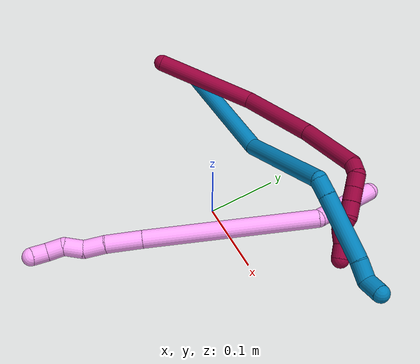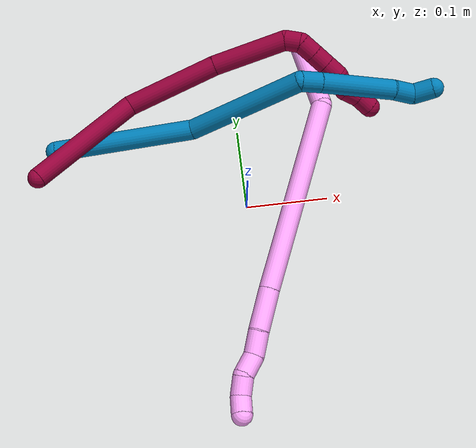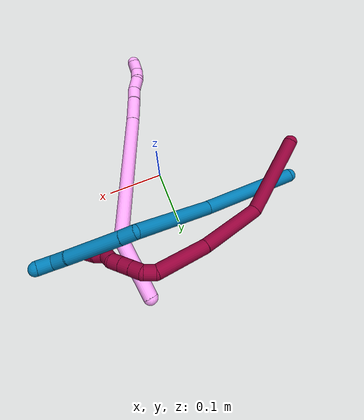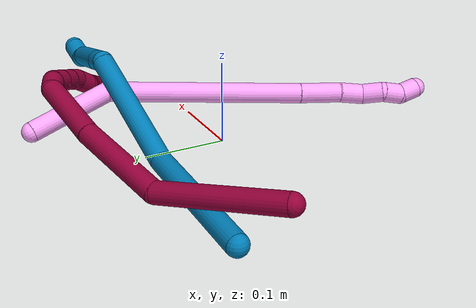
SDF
<sdf version="1.7">
 <world name="default">
  <model name="4">
   <static>0</static>
   <link name="4">
    <collision name="collision-cylinder-e_1_1_4">
     <pose>0.004999 -0.052545 0.001747 1.53757 0.0948 0.091705</pose>
     <geometry><cylinder><radius>0.0125</radius><length>0.105623</length></cylinder></geometry>
     <surface>
      <friction><ode><mu>1.16</mu><mu2>1.16</mu2><slip1>0</slip1><slip2>0</slip2></ode></friction>
      <contact><ode><kp>1e+06</kp><kd>1</kd><max_vel>0</max_vel><min_depth>0.001</min_depth></ode></contact>
     </surface>
    </collision>
    <visual name="visual-cylinder-e_1_1_4">
     <pose>0.004999 -0.052545 0.001747 1.53757 0.0948 0.091705</pose>
     <geometry><cylinder><radius>0.0125</radius><length>0.105623</length></cylinder></geometry>
     <material><ambient>1 0.65098 0.996078 1</ambient></material>
    </visual>
    <collision name="collision-cylinder-e_2_4_5">
     <pose>0.063433 -0.197341 0.059916 1.02188 0.458948 0.260414</pose>
     <geometry><cylinder><radius>0.0125</radius><length>0.241237</length></cylinder></geometry>
     <surface>
      <friction><ode><mu>1.16</mu><mu2>1.16</mu2><slip1>0</slip1><slip2>0</slip2></ode></friction>
      <contact><ode><kp>1e+06</kp><kd>1</kd><max_vel>0</max_vel><min_depth>0.001</min_depth></ode></contact>
     </surface>
    </collision>
    <visual name="visual-cylinder-e_2_4_5">
     <pose>0.063433 -0.197341 0.059916 1.02188 0.458948 0.260414</pose>
     <geometry><cylinder><radius>0.0125</radius><length>0.241237</length></cylinder></geometry>
     <material><ambient>1 0.65098 0.996078 1</ambient></material>
    </visual>
    <collision name="collision-cylinder-e_3_5_6">
     <pose>0.127637 -0.309462 0.127613 1.05469 0.440487 0.259287</pose>
     <geometry><cylinder><radius>0.0125</radius><length>0.050514</length></cylinder></geometry>
     <surface>
      <friction><ode><mu>1.16</mu><mu2>1.16</mu2><slip1>0</slip1><slip2>0</slip2></ode></friction>
      <contact><ode><kp>1e+06</kp><kd>1</kd><max_vel>0</max_vel><min_depth>0.001</min_depth></ode></contact>
     </surface>
    </collision>
    <visual name="visual-cylinder-e_3_5_6">
     <pose>0.127637 -0.309462 0.127613 1.05469 0.440487 0.259287</pose>
     <geometry><cylinder><radius>0.0125</radius><length>0.050514</length></cylinder></geometry>
     <material><ambient>1 0.65098 0.996078 1</ambient></material>
    </visual>
    <collision name="collision-cylinder-e_4_6_7">
     <pose>0.143401 -0.340805 0.146779 0.968272 0.344411 0.182423</pose>
     <geometry><cylinder><radius>0.0125</radius><length>0.029588</length></cylinder></geometry>
     <surface>
      <friction><ode><mu>1.16</mu><mu2>1.16</mu2><slip1>0</slip1><slip2>0</slip2></ode></friction>
      <contact><ode><kp>1e+06</kp><kd>1</kd><max_vel>0</max_vel><min_depth>0.001</min_depth></ode></contact>
     </surface>
    </collision>
    <visual name="visual-cylinder-e_4_6_7">
     <pose>0.143401 -0.340805 0.146779 0.968272 0.344411 0.182423</pose>
     <geometry><cylinder><radius>0.0125</radius><length>0.029588</length></cylinder></geometry>
     <material><ambient>1 0.65098 0.996078 1</ambient></material>
    </visual>
    <collision name="collision-cylinder-e_5_7_8">
     <pose>0.157226 -0.361319 0.158876 1.13544 0.724805 0.474501</pose>
     <geometry><cylinder><radius>0.0125</radius><length>0.026639</length></cylinder></geometry>
     <surface>
      <friction><ode><mu>1.16</mu><mu2>1.16</mu2><slip1>0</slip1><slip2>0</slip2></ode></friction>
      <contact><ode><kp>1e+06</kp><kd>1</kd><max_vel>0</max_vel><min_depth>0.001</min_depth></ode></contact>
     </surface>
    </collision>
    <visual name="visual-cylinder-e_5_7_8">
     <pose>0.157226 -0.361319 0.158876 1.13544 0.724805 0.474501</pose>
     <geometry><cylinder><radius>0.0125</radius><length>0.026639</length></cylinder></geometry>
     <material><ambient>1 0.65098 0.996078 1</ambient></material>
    </visual>
    <collision name="collision-cylinder-e_6_8_9">
     <pose>0.169076 -0.37977 0.169959 0.939589 0.253424 0.129179</pose>
     <geometry><cylinder><radius>0.0125</radius><length>0.02408</length></cylinder></geometry>
     <surface>
      <friction><ode><mu>1.16</mu><mu2>1.16</mu2><slip1>0</slip1><slip2>0</slip2></ode></friction>
      <contact><ode><kp>1e+06</kp><kd>1</kd><max_vel>0</max_vel><min_depth>0.001</min_depth></ode></contact>
     </surface>
    </collision>
    <visual name="visual-cylinder-e_6_8_9">
     <pose>0.169076 -0.37977 0.169959 0.939589 0.253424 0.129179</pose>
     <geometry><cylinder><radius>0.0125</radius><length>0.02408</length></cylinder></geometry>
     <material><ambient>1 0.65098 0.996078 1</ambient></material>
    </visual>
    <collision name="collision-cylinder-e_7_9_2">
     <pose>0.174836 -0.39989 0.178352 1.43025 0.248264 0.215883</pose>
     <geometry><cylinder><radius>0.0125</radius><length>0.022319</length></cylinder></geometry>
     <surface>
      <friction><ode><mu>1.16</mu><mu2>1.16</mu2><slip1>0</slip1><slip2>0</slip2></ode></friction>
      <contact><ode><kp>1e+06</kp><kd>1</kd><max_vel>0</max_vel><min_depth>0.001</min_depth></ode></contact>
     </surface>
    </collision>
    <visual name="visual-cylinder-e_7_9_2">
     <pose>0.174836 -0.39989 0.178352 1.43025 0.248264 0.215883</pose>
     <geometry><cylinder><radius>0.0125</radius><length>0.022319</length></cylinder></geometry>
     <material><ambient>1 0.65098 0.996078 1</ambient></material>
    </visual>
    <collision name="collision-sphere-2">
     <pose>0.177579 -0.410601 0.179868 0 -0 0</pose>
     <geometry><sphere><radius>0.0125</radius></sphere></geometry>
     <surface>
      <friction><ode><mu>1.16</mu><mu2>1.16</mu2><slip1>0</slip1><slip2>0</slip2></ode></friction>
      <contact><ode><kp>1e+06</kp><kd>1</kd><max_vel>0</max_vel><min_depth>0.001</min_depth></ode></contact>
     </surface>
    </collision>
    <visual name="visual-sphere-2">
     <pose>0.177579 -0.410601 0.179868 0 -0 0</pose>
     <geometry><sphere><radius>0.0125</radius></sphere></geometry>
     <material><ambient>1 0.65098 0.996078 1</ambient></material>
    </visual>
    <collision name="collision-sphere-9">
     <pose>0.172094 -0.389179 0.176837 0 -0 0</pose>
     <geometry><sphere><radius>0.0125</radius></sphere></geometry>
     <surface>
      <friction><ode><mu>1.16</mu><mu2>1.16</mu2><slip1>0</slip1><slip2>0</slip2></ode></friction>
      <contact><ode><kp>1e+06</kp><kd>1</kd><max_vel>0</max_vel><min_depth>0.001</min_depth></ode></contact>
     </surface>
    </collision>
    <visual name="visual-sphere-9">
     <pose>0.172094 -0.389179 0.176837 0 -0 0</pose>
     <geometry><sphere><radius>0.0125</radius></sphere></geometry>
     <material><ambient>1 0.65098 0.996078 1</ambient></material>
    </visual>
    <collision name="collision-sphere-4">
     <pose>0.009998 -0.10509 0.003494 0 -0 0</pose>
     <geometry><sphere><radius>0.0125</radius></sphere></geometry>
     <surface>
      <friction><ode><mu>1.16</mu><mu2>1.16</mu2><slip1>0</slip1><slip2>0</slip2></ode></friction>
      <contact><ode><kp>1e+06</kp><kd>1</kd><max_vel>0</max_vel><min_depth>0.001</min_depth></ode></contact>
     </surface>
    </collision>
    <visual name="visual-sphere-4">
     <pose>0.009998 -0.10509 0.003494 0 -0 0</pose>
     <geometry><sphere><radius>0.0125</radius></sphere></geometry>
     <material><ambient>1 0.65098 0.996078 1</ambient></material>
    </visual>
    <collision name="collision-sphere-1">
     <geometry><sphere><radius>0.0125</radius></sphere></geometry>
     <surface>
      <friction><ode><mu>1.16</mu><mu2>1.16</mu2><slip1>0</slip1><slip2>0</slip2></ode></friction>
      <contact><ode><kp>1e+06</kp><kd>1</kd><max_vel>0</max_vel><min_depth>0.001</min_depth></ode></contact>
     </surface>
    </collision>
    <visual name="visual-sphere-1">
     <geometry><sphere><radius>0.0125</radius></sphere></geometry>
     <material><ambient>1 0.65098 0.996078 1</ambient></material>
    </visual>
    <collision name="collision-sphere-8">
     <pose>0.166057 -0.37036 0.163081 0 -0 0</pose>
     <geometry><sphere><radius>0.0125</radius></sphere></geometry>
     <surface>
      <friction><ode><mu>1.16</mu><mu2>1.16</mu2><slip1>0</slip1><slip2>0</slip2></ode></friction>
      <contact><ode><kp>1e+06</kp><kd>1</kd><max_vel>0</max_vel><min_depth>0.001</min_depth></ode></contact>
     </surface>
    </collision>
    <visual name="visual-sphere-8">
     <pose>0.166057 -0.37036 0.163081 0 -0 0</pose>
     <geometry><sphere><radius>0.0125</radius></sphere></geometry>
     <material><ambient>1 0.65098 0.996078 1</ambient></material>
    </visual>
    <collision name="collision-sphere-5">
     <pose>0.116867 -0.289591 0.116338 0 -0 0</pose>
     <geometry><sphere><radius>0.0125</radius></sphere></geometry>
     <surface>
      <friction><ode><mu>1.16</mu><mu2>1.16</mu2><slip1>0</slip1><slip2>0</slip2></ode></friction>
      <contact><ode><kp>1e+06</kp><kd>1</kd><max_vel>0</max_vel><min_depth>0.001</min_depth></ode></contact>
     </surface>
    </collision>
    <visual name="visual-sphere-5">
     <pose>0.116867 -0.289591 0.116338 0 -0 0</pose>
     <geometry><sphere><radius>0.0125</radius></sphere></geometry>
     <material><ambient>1 0.65098 0.996078 1</ambient></material>
    </visual>
    <collision name="collision-sphere-6">
     <pose>0.138406 -0.329332 0.138887 0 -0 0</pose>
     <geometry><sphere><radius>0.0125</radius></sphere></geometry>
     <surface>
      <friction><ode><mu>1.16</mu><mu2>1.16</mu2><slip1>0</slip1><slip2>0</slip2></ode></friction>
      <contact><ode><kp>1e+06</kp><kd>1</kd><max_vel>0</max_vel><min_depth>0.001</min_depth></ode></contact>
     </surface>
    </collision>
    <visual name="visual-sphere-6">
     <pose>0.138406 -0.329332 0.138887 0 -0 0</pose>
     <geometry><sphere><radius>0.0125</radius></sphere></geometry>
     <material><ambient>1 0.65098 0.996078 1</ambient></material>
    </visual>
    <collision name="collision-sphere-7">
     <pose>0.148396 -0.352278 0.15467 0 -0 0</pose>
     <geometry><sphere><radius>0.0125</radius></sphere></geometry>
     <surface>
      <friction><ode><mu>1.16</mu><mu2>1.16</mu2><slip1>0</slip1><slip2>0</slip2></ode></friction>
      <contact><ode><kp>1e+06</kp><kd>1</kd><max_vel>0</max_vel><min_depth>0.001</min_depth></ode></contact>
     </surface>
    </collision>
    <visual name="visual-sphere-7">
     <pose>0.148396 -0.352278 0.15467 0 -0 0</pose>
     <geometry><sphere><radius>0.0125</radius></sphere></geometry>
     <material><ambient>1 0.65098 0.996078 1</ambient></material>
    </visual>
    <inertial>
     <pose>0.077365 -0.213134 0.075466 0 -0 0</pose>
     <mass>0.5</mass>
     <inertia>
      <ixx>0.001443</ixx>
      <ixy>0</ixy>
      <ixz>0</ixz>
      <iyy>0.000981</iyy>
      <iyz>0</iyz>
      <izz>0.000494</izz>
     </inertia>
    </inertial>
   </link>
   <pose>0.091581 0.207448 0.017651 -2.85347 -0.408196 -3.01866</pose>
  </model>
  <model name="8">
   <static>0</static>
   <link name="8">
    <collision name="collision-cylinder-e_1_1_4">
     <pose>-0.01065 0.038351 -0.063033 -2.595 -0.143348 0.501488</pose>
     <geometry><cylinder><radius>0.0125</radius><length>0.149095</length></cylinder></geometry>
     <surface>
      <friction><ode><mu>1.16</mu><mu2>1.16</mu2><slip1>0</slip1><slip2>0</slip2></ode></friction>
      <contact><ode><kp>1e+06</kp><kd>1</kd><max_vel>0</max_vel><min_depth>0.001</min_depth></ode></contact>
     </surface>
    </collision>
    <visual name="visual-cylinder-e_1_1_4">
     <pose>-0.01065 0.038351 -0.063033 -2.595 -0.143348 0.501488</pose>
     <geometry><cylinder><radius>0.0125</radius><length>0.149095</length></cylinder></geometry>
     <material><ambient>0.584314 0 0.227451 1</ambient></material>
    </visual>
    <collision name="collision-cylinder-e_2_4_5">
     <pose>0.001092 0.1057 -0.171969 -2.57817 0.391151 -1.20053</pose>
     <geometry><cylinder><radius>0.0125</radius><length>0.117462</length></cylinder></geometry>
     <surface>
      <friction><ode><mu>1.16</mu><mu2>1.16</mu2><slip1>0</slip1><slip2>0</slip2></ode></friction>
      <contact><ode><kp>1e+06</kp><kd>1</kd><max_vel>0</max_vel><min_depth>0.001</min_depth></ode></contact>
     </surface>
    </collision>
    <visual name="visual-cylinder-e_2_4_5">
     <pose>0.001092 0.1057 -0.171969 -2.57817 0.391151 -1.20053</pose>
     <geometry><cylinder><radius>0.0125</radius><length>0.117462</length></cylinder></geometry>
     <material><ambient>0.584314 0 0.227451 1</ambient></material>
    </visual>
    <collision name="collision-cylinder-e_3_5_6">
     <pose>0.045644 0.154132 -0.25357 -2.64304 0.499162 -1.57206</pose>
     <geometry><cylinder><radius>0.0125</radius><length>0.092588</length></cylinder></geometry>
     <surface>
      <friction><ode><mu>1.16</mu><mu2>1.16</mu2><slip1>0</slip1><slip2>0</slip2></ode></friction>
      <contact><ode><kp>1e+06</kp><kd>1</kd><max_vel>0</max_vel><min_depth>0.001</min_depth></ode></contact>
     </surface>
    </collision>
    <visual name="visual-cylinder-e_3_5_6">
     <pose>0.045644 0.154132 -0.25357 -2.64304 0.499162 -1.57206</pose>
     <geometry><cylinder><radius>0.0125</radius><length>0.092588</length></cylinder></geometry>
     <material><ambient>0.584314 0 0.227451 1</ambient></material>
    </visual>
    <collision name="collision-cylinder-e_4_6_7">
     <pose>0.074733 0.173237 -0.296542 3.09626 0.760522 3.02829</pose>
     <geometry><cylinder><radius>0.0125</radius><length>0.020105</length></cylinder></geometry>
     <surface>
      <friction><ode><mu>1.16</mu><mu2>1.16</mu2><slip1>0</slip1><slip2>0</slip2></ode></friction>
      <contact><ode><kp>1e+06</kp><kd>1</kd><max_vel>0</max_vel><min_depth>0.001</min_depth></ode></contact>
     </surface>
    </collision>
    <visual name="visual-cylinder-e_4_6_7">
     <pose>0.074733 0.173237 -0.296542 3.09626 0.760522 3.02829</pose>
     <geometry><cylinder><radius>0.0125</radius><length>0.020105</length></cylinder></geometry>
     <material><ambient>0.584314 0 0.227451 1</ambient></material>
    </visual>
    <collision name="collision-cylinder-e_5_7_8">
     <pose>0.086733 0.166892 -0.310548 2.41229 0.511788 1.20171</pose>
     <geometry><cylinder><radius>0.0125</radius><length>0.020706</length></cylinder></geometry>
     <surface>
      <friction><ode><mu>1.16</mu><mu2>1.16</mu2><slip1>0</slip1><slip2>0</slip2></ode></friction>
      <contact><ode><kp>1e+06</kp><kd>1</kd><max_vel>0</max_vel><min_depth>0.001</min_depth></ode></contact>
     </surface>
    </collision>
    <visual name="visual-cylinder-e_5_7_8">
     <pose>0.086733 0.166892 -0.310548 2.41229 0.511788 1.20171</pose>
     <geometry><cylinder><radius>0.0125</radius><length>0.020706</length></cylinder></geometry>
     <material><ambient>0.584314 0 0.227451 1</ambient></material>
    </visual>
    <collision name="collision-cylinder-e_6_8_9">
     <pose>0.096596 0.154998 -0.323819 2.4093 0.499013 1.17308</pose>
     <geometry><cylinder><radius>0.0125</radius><length>0.020032</length></cylinder></geometry>
     <surface>
      <friction><ode><mu>1.16</mu><mu2>1.16</mu2><slip1>0</slip1><slip2>0</slip2></ode></friction>
      <contact><ode><kp>1e+06</kp><kd>1</kd><max_vel>0</max_vel><min_depth>0.001</min_depth></ode></contact>
     </surface>
    </collision>
    <visual name="visual-cylinder-e_6_8_9">
     <pose>0.096596 0.154998 -0.323819 2.4093 0.499013 1.17308</pose>
     <geometry><cylinder><radius>0.0125</radius><length>0.020032</length></cylinder></geometry>
     <material><ambient>0.584314 0 0.227451 1</ambient></material>
    </visual>
    <collision name="collision-cylinder-e_7_9_10">
     <pose>0.106043 0.143207 -0.336951 2.41066 0.483908 1.14561</pose>
     <geometry><cylinder><radius>0.0125</radius><length>0.020005</length></cylinder></geometry>
     <surface>
      <friction><ode><mu>1.16</mu><mu2>1.16</mu2><slip1>0</slip1><slip2>0</slip2></ode></friction>
      <contact><ode><kp>1e+06</kp><kd>1</kd><max_vel>0</max_vel><min_depth>0.001</min_depth></ode></contact>
     </surface>
    </collision>
    <visual name="visual-cylinder-e_7_9_10">
     <pose>0.106043 0.143207 -0.336951 2.41066 0.483908 1.14561</pose>
     <geometry><cylinder><radius>0.0125</radius><length>0.020005</length></cylinder></geometry>
     <material><ambient>0.584314 0 0.227451 1</ambient></material>
    </visual>
    <collision name="collision-cylinder-e_8_10_11">
     <pose>0.113191 0.128582 -0.347766 2.022 0.252162 0.399149</pose>
     <geometry><cylinder><radius>0.0125</radius><length>0.02</length></cylinder></geometry>
     <surface>
      <friction><ode><mu>1.16</mu><mu2>1.16</mu2><slip1>0</slip1><slip2>0</slip2></ode></friction>
      <contact><ode><kp>1e+06</kp><kd>1</kd><max_vel>0</max_vel><min_depth>0.001</min_depth></ode></contact>
     </surface>
    </collision>
    <visual name="visual-cylinder-e_8_10_11">
     <pose>0.113191 0.128582 -0.347766 2.022 0.252162 0.399149</pose>
     <geometry><cylinder><radius>0.0125</radius><length>0.02</length></cylinder></geometry>
     <material><ambient>0.584314 0 0.227451 1</ambient></material>
    </visual>
    <collision name="collision-cylinder-e_9_11_12">
     <pose>0.119002 0.116123 -0.360651 2.7336 0.337839 1.37886</pose>
     <geometry><cylinder><radius>0.0125</radius><length>0.020004</length></cylinder></geometry>
     <surface>
      <friction><ode><mu>1.16</mu><mu2>1.16</mu2><slip1>0</slip1><slip2>0</slip2></ode></friction>
      <contact><ode><kp>1e+06</kp><kd>1</kd><max_vel>0</max_vel><min_depth>0.001</min_depth></ode></contact>
     </surface>
    </collision>
    <visual name="visual-cylinder-e_9_11_12">
     <pose>0.119002 0.116123 -0.360651 2.7336 0.337839 1.37886</pose>
     <geometry><cylinder><radius>0.0125</radius><length>0.020004</length></cylinder></geometry>
     <material><ambient>0.584314 0 0.227451 1</ambient></material>
    </visual>
    <collision name="collision-cylinder-e_10_12_2">
     <pose>0.12586 0.106341 -0.376456 2.43991 0.362137 0.92766</pose>
     <geometry><cylinder><radius>0.0125</radius><length>0.020003</length></cylinder></geometry>
     <surface>
      <friction><ode><mu>1.16</mu><mu2>1.16</mu2><slip1>0</slip1><slip2>0</slip2></ode></friction>
      <contact><ode><kp>1e+06</kp><kd>1</kd><max_vel>0</max_vel><min_depth>0.001</min_depth></ode></contact>
     </surface>
    </collision>
    <visual name="visual-cylinder-e_10_12_2">
     <pose>0.12586 0.106341 -0.376456 2.43991 0.362137 0.92766</pose>
     <geometry><cylinder><radius>0.0125</radius><length>0.020003</length></cylinder></geometry>
     <material><ambient>0.584314 0 0.227451 1</ambient></material>
    </visual>
    <collision name="collision-sphere-2">
     <pose>0.129403 0.100304 -0.383599 0 -0 0</pose>
     <geometry><sphere><radius>0.0125</radius></sphere></geometry>
     <surface>
      <friction><ode><mu>1.16</mu><mu2>1.16</mu2><slip1>0</slip1><slip2>0</slip2></ode></friction>
      <contact><ode><kp>1e+06</kp><kd>1</kd><max_vel>0</max_vel><min_depth>0.001</min_depth></ode></contact>
     </surface>
    </collision>
    <visual name="visual-sphere-2">
     <pose>0.129403 0.100304 -0.383599 0 -0 0</pose>
     <geometry><sphere><radius>0.0125</radius></sphere></geometry>
     <material><ambient>0.584314 0 0.227451 1</ambient></material>
    </visual>
    <collision name="collision-sphere-12">
     <pose>0.122317 0.112379 -0.369313 0 -0 0</pose>
     <geometry><sphere><radius>0.0125</radius></sphere></geometry>
     <surface>
      <friction><ode><mu>1.16</mu><mu2>1.16</mu2><slip1>0</slip1><slip2>0</slip2></ode></friction>
      <contact><ode><kp>1e+06</kp><kd>1</kd><max_vel>0</max_vel><min_depth>0.001</min_depth></ode></contact>
     </surface>
    </collision>
    <visual name="visual-sphere-12">
     <pose>0.122317 0.112379 -0.369313 0 -0 0</pose>
     <geometry><sphere><radius>0.0125</radius></sphere></geometry>
     <material><ambient>0.584314 0 0.227451 1</ambient></material>
    </visual>
    <collision name="collision-sphere-11">
     <pose>0.115686 0.119867 -0.351989 0 -0 0</pose>
     <geometry><sphere><radius>0.0125</radius></sphere></geometry>
     <surface>
      <friction><ode><mu>1.16</mu><mu2>1.16</mu2><slip1>0</slip1><slip2>0</slip2></ode></friction>
      <contact><ode><kp>1e+06</kp><kd>1</kd><max_vel>0</max_vel><min_depth>0.001</min_depth></ode></contact>
     </surface>
    </collision>
    <visual name="visual-sphere-11">
     <pose>0.115686 0.119867 -0.351989 0 -0 0</pose>
     <geometry><sphere><radius>0.0125</radius></sphere></geometry>
     <material><ambient>0.584314 0 0.227451 1</ambient></material>
    </visual>
    <collision name="collision-sphere-10">
     <pose>0.110696 0.137296 -0.343543 0 -0 0</pose>
     <geometry><sphere><radius>0.0125</radius></sphere></geometry>
     <surface>
      <friction><ode><mu>1.16</mu><mu2>1.16</mu2><slip1>0</slip1><slip2>0</slip2></ode></friction>
      <contact><ode><kp>1e+06</kp><kd>1</kd><max_vel>0</max_vel><min_depth>0.001</min_depth></ode></contact>
     </surface>
    </collision>
    <visual name="visual-sphere-10">
     <pose>0.110696 0.137296 -0.343543 0 -0 0</pose>
     <geometry><sphere><radius>0.0125</radius></sphere></geometry>
     <material><ambient>0.584314 0 0.227451 1</ambient></material>
    </visual>
    <collision name="collision-sphere-9">
     <pose>0.101389 0.149118 -0.330359 0 -0 0</pose>
     <geometry><sphere><radius>0.0125</radius></sphere></geometry>
     <surface>
      <friction><ode><mu>1.16</mu><mu2>1.16</mu2><slip1>0</slip1><slip2>0</slip2></ode></friction>
      <contact><ode><kp>1e+06</kp><kd>1</kd><max_vel>0</max_vel><min_depth>0.001</min_depth></ode></contact>
     </surface>
    </collision>
    <visual name="visual-sphere-9">
     <pose>0.101389 0.149118 -0.330359 0 -0 0</pose>
     <geometry><sphere><radius>0.0125</radius></sphere></geometry>
     <material><ambient>0.584314 0 0.227451 1</ambient></material>
    </visual>
    <collision name="collision-sphere-4">
     <pose>-0.021299 0.076702 -0.126066 0 -0 0</pose>
     <geometry><sphere><radius>0.0125</radius></sphere></geometry>
     <surface>
      <friction><ode><mu>1.16</mu><mu2>1.16</mu2><slip1>0</slip1><slip2>0</slip2></ode></friction>
      <contact><ode><kp>1e+06</kp><kd>1</kd><max_vel>0</max_vel><min_depth>0.001</min_depth></ode></contact>
     </surface>
    </collision>
    <visual name="visual-sphere-4">
     <pose>-0.021299 0.076702 -0.126066 0 -0 0</pose>
     <geometry><sphere><radius>0.0125</radius></sphere></geometry>
     <material><ambient>0.584314 0 0.227451 1</ambient></material>
    </visual>
    <collision name="collision-sphere-1">
     <geometry><sphere><radius>0.0125</radius></sphere></geometry>
     <surface>
      <friction><ode><mu>1.16</mu><mu2>1.16</mu2><slip1>0</slip1><slip2>0</slip2></ode></friction>
      <contact><ode><kp>1e+06</kp><kd>1</kd><max_vel>0</max_vel><min_depth>0.001</min_depth></ode></contact>
     </surface>
    </collision>
    <visual name="visual-sphere-1">
     <geometry><sphere><radius>0.0125</radius></sphere></geometry>
     <material><ambient>0.584314 0 0.227451 1</ambient></material>
    </visual>
    <collision name="collision-sphere-8">
     <pose>0.091803 0.160877 -0.317279 0 -0 0</pose>
     <geometry><sphere><radius>0.0125</radius></sphere></geometry>
     <surface>
      <friction><ode><mu>1.16</mu><mu2>1.16</mu2><slip1>0</slip1><slip2>0</slip2></ode></friction>
      <contact><ode><kp>1e+06</kp><kd>1</kd><max_vel>0</max_vel><min_depth>0.001</min_depth></ode></contact>
     </surface>
    </collision>
    <visual name="visual-sphere-8">
     <pose>0.091803 0.160877 -0.317279 0 -0 0</pose>
     <geometry><sphere><radius>0.0125</radius></sphere></geometry>
     <material><ambient>0.584314 0 0.227451 1</ambient></material>
    </visual>
    <collision name="collision-sphere-5">
     <pose>0.023483 0.134698 -0.217872 0 -0 0</pose>
     <geometry><sphere><radius>0.0125</radius></sphere></geometry>
     <surface>
      <friction><ode><mu>1.16</mu><mu2>1.16</mu2><slip1>0</slip1><slip2>0</slip2></ode></friction>
      <contact><ode><kp>1e+06</kp><kd>1</kd><max_vel>0</max_vel><min_depth>0.001</min_depth></ode></contact>
     </surface>
    </collision>
    <visual name="visual-sphere-5">
     <pose>0.023483 0.134698 -0.217872 0 -0 0</pose>
     <geometry><sphere><radius>0.0125</radius></sphere></geometry>
     <material><ambient>0.584314 0 0.227451 1</ambient></material>
    </visual>
    <collision name="collision-sphere-6">
     <pose>0.067804 0.173567 -0.289267 0 -0 0</pose>
     <geometry><sphere><radius>0.0125</radius></sphere></geometry>
     <surface>
      <friction><ode><mu>1.16</mu><mu2>1.16</mu2><slip1>0</slip1><slip2>0</slip2></ode></friction>
      <contact><ode><kp>1e+06</kp><kd>1</kd><max_vel>0</max_vel><min_depth>0.001</min_depth></ode></contact>
     </surface>
    </collision>
    <visual name="visual-sphere-6">
     <pose>0.067804 0.173567 -0.289267 0 -0 0</pose>
     <geometry><sphere><radius>0.0125</radius></sphere></geometry>
     <material><ambient>0.584314 0 0.227451 1</ambient></material>
    </visual>
    <collision name="collision-sphere-7">
     <pose>0.081662 0.172907 -0.303818 0 -0 0</pose>
     <geometry><sphere><radius>0.0125</radius></sphere></geometry>
     <surface>
      <friction><ode><mu>1.16</mu><mu2>1.16</mu2><slip1>0</slip1><slip2>0</slip2></ode></friction>
      <contact><ode><kp>1e+06</kp><kd>1</kd><max_vel>0</max_vel><min_depth>0.001</min_depth></ode></contact>
     </surface>
    </collision>
    <visual name="visual-sphere-7">
     <pose>0.081662 0.172907 -0.303818 0 -0 0</pose>
     <geometry><sphere><radius>0.0125</radius></sphere></geometry>
     <material><ambient>0.584314 0 0.227451 1</ambient></material>
    </visual>
    <inertial>
     <pose>0.034566 0.104669 -0.20079 0 -0 0</pose>
     <mass>0.5</mass>
     <inertia>
      <ixx>0.000264</ixx>
      <ixy>0</ixy>
      <ixz>0</ixz>
      <iyy>-0.000234</iyy>
      <iyz>0</iyz>
      <izz>-0.000319</izz>
     </inertia>
    </inertial>
   </link>
   <pose>-0.247069 0.05025 0.051933 0.947415 -0.730715 -0.967505</pose>
  </model>
  <model name="9">
   <static>0</static>
   <link name="9">
    <collision name="collision-cylinder-e_1_1_4">
     <pose>0.010182 -0.085852 0.005942 1.5017 0.117767 0.109915</pose>
     <geometry><cylinder><radius>0.0125</radius><length>0.173315</length></cylinder></geometry>
     <surface>
      <friction><ode><mu>1.16</mu><mu2>1.16</mu2><slip1>0</slip1><slip2>0</slip2></ode></friction>
      <contact><ode><kp>1e+06</kp><kd>1</kd><max_vel>0</max_vel><min_depth>0.001</min_depth></ode></contact>
     </surface>
    </collision>
    <visual name="visual-cylinder-e_1_1_4">
     <pose>0.010182 -0.085852 0.005942 1.5017 0.117767 0.109915</pose>
     <geometry><cylinder><radius>0.0125</radius><length>0.173315</length></cylinder></geometry>
     <material><ambient>0 0.490196 0.709804 1</ambient></material>
    </visual>
    <collision name="collision-cylinder-e_2_4_5">
     <pose>0.034168 -0.237117 0.049419 1.04985 0.181035 0.105032</pose>
     <geometry><cylinder><radius>0.0125</radius><length>0.153341</length></cylinder></geometry>
     <surface>
      <friction><ode><mu>1.16</mu><mu2>1.16</mu2><slip1>0</slip1><slip2>0</slip2></ode></friction>
      <contact><ode><kp>1e+06</kp><kd>1</kd><max_vel>0</max_vel><min_depth>0.001</min_depth></ode></contact>
     </surface>
    </collision>
    <visual name="visual-cylinder-e_2_4_5">
     <pose>0.034168 -0.237117 0.049419 1.04985 0.181035 0.105032</pose>
     <geometry><cylinder><radius>0.0125</radius><length>0.153341</length></cylinder></geometry>
     <material><ambient>0 0.490196 0.709804 1</ambient></material>
    </visual>
    <collision name="collision-cylinder-e_3_5_6">
     <pose>0.048247 -0.315015 0.083762 1.82109 0.021309 0.027441</pose>
     <geometry><cylinder><radius>0.0125</radius><length>0.025778</length></cylinder></geometry>
     <surface>
      <friction><ode><mu>1.16</mu><mu2>1.16</mu2><slip1>0</slip1><slip2>0</slip2></ode></friction>
      <contact><ode><kp>1e+06</kp><kd>1</kd><max_vel>0</max_vel><min_depth>0.001</min_depth></ode></contact>
     </surface>
    </collision>
    <visual name="visual-cylinder-e_3_5_6">
     <pose>0.048247 -0.315015 0.083762 1.82109 0.021309 0.027441</pose>
     <geometry><cylinder><radius>0.0125</radius><length>0.025778</length></cylinder></geometry>
     <material><ambient>0 0.490196 0.709804 1</ambient></material>
    </visual>
    <collision name="collision-cylinder-e_4_6_7">
     <pose>0.048176 -0.372785 0.06851 1.83108 -0.007366 -0.009585</pose>
     <geometry><cylinder><radius>0.0125</radius><length>0.093731</length></cylinder></geometry>
     <surface>
      <friction><ode><mu>1.16</mu><mu2>1.16</mu2><slip1>0</slip1><slip2>0</slip2></ode></friction>
      <contact><ode><kp>1e+06</kp><kd>1</kd><max_vel>0</max_vel><min_depth>0.001</min_depth></ode></contact>
     </surface>
    </collision>
    <visual name="visual-cylinder-e_4_6_7">
     <pose>0.048176 -0.372785 0.06851 1.83108 -0.007366 -0.009585</pose>
     <geometry><cylinder><radius>0.0125</radius><length>0.093731</length></cylinder></geometry>
     <material><ambient>0 0.490196 0.709804 1</ambient></material>
    </visual>
    <collision name="collision-cylinder-e_5_7_8">
     <pose>0.047025 -0.430797 0.0511 1.96873 -0.058364 -0.087814</pose>
     <geometry><cylinder><radius>0.0125</radius><length>0.027656</length></cylinder></geometry>
     <surface>
      <friction><ode><mu>1.16</mu><mu2>1.16</mu2><slip1>0</slip1><slip2>0</slip2></ode></friction>
      <contact><ode><kp>1e+06</kp><kd>1</kd><max_vel>0</max_vel><min_depth>0.001</min_depth></ode></contact>
     </surface>
    </collision>
    <visual name="visual-cylinder-e_5_7_8">
     <pose>0.047025 -0.430797 0.0511 1.96873 -0.058364 -0.087814</pose>
     <geometry><cylinder><radius>0.0125</radius><length>0.027656</length></cylinder></geometry>
     <material><ambient>0 0.490196 0.709804 1</ambient></material>
    </visual>
    <collision name="collision-cylinder-e_6_8_2">
     <pose>0.048095 -0.455795 0.049897 1.24495 0.143904 0.103359</pose>
     <geometry><cylinder><radius>0.0125</radius><length>0.026179</length></cylinder></geometry>
     <surface>
      <friction><ode><mu>1.16</mu><mu2>1.16</mu2><slip1>0</slip1><slip2>0</slip2></ode></friction>
      <contact><ode><kp>1e+06</kp><kd>1</kd><max_vel>0</max_vel><min_depth>0.001</min_depth></ode></contact>
     </surface>
    </collision>
    <visual name="visual-cylinder-e_6_8_2">
     <pose>0.048095 -0.455795 0.049897 1.24495 0.143904 0.103359</pose>
     <geometry><cylinder><radius>0.0125</radius><length>0.026179</length></cylinder></geometry>
     <material><ambient>0 0.490196 0.709804 1</ambient></material>
    </visual>
    <collision name="collision-sphere-2">
     <pose>0.049972 -0.468068 0.054044 0 -0 0</pose>
     <geometry><sphere><radius>0.0125</radius></sphere></geometry>
     <surface>
      <friction><ode><mu>1.16</mu><mu2>1.16</mu2><slip1>0</slip1><slip2>0</slip2></ode></friction>
      <contact><ode><kp>1e+06</kp><kd>1</kd><max_vel>0</max_vel><min_depth>0.001</min_depth></ode></contact>
     </surface>
    </collision>
    <visual name="visual-sphere-2">
     <pose>0.049972 -0.468068 0.054044 0 -0 0</pose>
     <geometry><sphere><radius>0.0125</radius></sphere></geometry>
     <material><ambient>0 0.490196 0.709804 1</ambient></material>
    </visual>
    <collision name="collision-sphere-4">
     <pose>0.020364 -0.171703 0.011884 0 -0 0</pose>
     <geometry><sphere><radius>0.0125</radius></sphere></geometry>
     <surface>
      <friction><ode><mu>1.16</mu><mu2>1.16</mu2><slip1>0</slip1><slip2>0</slip2></ode></friction>
      <contact><ode><kp>1e+06</kp><kd>1</kd><max_vel>0</max_vel><min_depth>0.001</min_depth></ode></contact>
     </surface>
    </collision>
    <visual name="visual-sphere-4">
     <pose>0.020364 -0.171703 0.011884 0 -0 0</pose>
     <geometry><sphere><radius>0.0125</radius></sphere></geometry>
     <material><ambient>0 0.490196 0.709804 1</ambient></material>
    </visual>
    <collision name="collision-sphere-1">
     <geometry><sphere><radius>0.0125</radius></sphere></geometry>
     <surface>
      <friction><ode><mu>1.16</mu><mu2>1.16</mu2><slip1>0</slip1><slip2>0</slip2></ode></friction>
      <contact><ode><kp>1e+06</kp><kd>1</kd><max_vel>0</max_vel><min_depth>0.001</min_depth></ode></contact>
     </surface>
    </collision>
    <visual name="visual-sphere-1">
     <geometry><sphere><radius>0.0125</radius></sphere></geometry>
     <material><ambient>0 0.490196 0.709804 1</ambient></material>
    </visual>
    <collision name="collision-sphere-8">
     <pose>0.046218 -0.443523 0.04575 0 -0 0</pose>
     <geometry><sphere><radius>0.0125</radius></sphere></geometry>
     <surface>
      <friction><ode><mu>1.16</mu><mu2>1.16</mu2><slip1>0</slip1><slip2>0</slip2></ode></friction>
      <contact><ode><kp>1e+06</kp><kd>1</kd><max_vel>0</max_vel><min_depth>0.001</min_depth></ode></contact>
     </surface>
    </collision>
    <visual name="visual-sphere-8">
     <pose>0.046218 -0.443523 0.04575 0 -0 0</pose>
     <geometry><sphere><radius>0.0125</radius></sphere></geometry>
     <material><ambient>0 0.490196 0.709804 1</ambient></material>
    </visual>
    <collision name="collision-sphere-5">
     <pose>0.047972 -0.30253 0.086954 0 -0 0</pose>
     <geometry><sphere><radius>0.0125</radius></sphere></geometry>
     <surface>
      <friction><ode><mu>1.16</mu><mu2>1.16</mu2><slip1>0</slip1><slip2>0</slip2></ode></friction>
      <contact><ode><kp>1e+06</kp><kd>1</kd><max_vel>0</max_vel><min_depth>0.001</min_depth></ode></contact>
     </surface>
    </collision>
    <visual name="visual-sphere-5">
     <pose>0.047972 -0.30253 0.086954 0 -0 0</pose>
     <geometry><sphere><radius>0.0125</radius></sphere></geometry>
     <material><ambient>0 0.490196 0.709804 1</ambient></material>
    </visual>
    <collision name="collision-sphere-6">
     <pose>0.048522 -0.327499 0.08057 0 -0 0</pose>
     <geometry><sphere><radius>0.0125</radius></sphere></geometry>
     <surface>
      <friction><ode><mu>1.16</mu><mu2>1.16</mu2><slip1>0</slip1><slip2>0</slip2></ode></friction>
      <contact><ode><kp>1e+06</kp><kd>1</kd><max_vel>0</max_vel><min_depth>0.001</min_depth></ode></contact>
     </surface>
    </collision>
    <visual name="visual-sphere-6">
     <pose>0.048522 -0.327499 0.08057 0 -0 0</pose>
     <geometry><sphere><radius>0.0125</radius></sphere></geometry>
     <material><ambient>0 0.490196 0.709804 1</ambient></material>
    </visual>
    <collision name="collision-sphere-7">
     <pose>0.047831 -0.418071 0.056449 0 -0 0</pose>
     <geometry><sphere><radius>0.0125</radius></sphere></geometry>
     <surface>
      <friction><ode><mu>1.16</mu><mu2>1.16</mu2><slip1>0</slip1><slip2>0</slip2></ode></friction>
      <contact><ode><kp>1e+06</kp><kd>1</kd><max_vel>0</max_vel><min_depth>0.001</min_depth></ode></contact>
     </surface>
    </collision>
    <visual name="visual-sphere-7">
     <pose>0.047831 -0.418071 0.056449 0 -0 0</pose>
     <geometry><sphere><radius>0.0125</radius></sphere></geometry>
     <material><ambient>0 0.490196 0.709804 1</ambient></material>
    </visual>
    <inertial>
     <pose>0.030646 -0.236295 0.039816 0 -0 0</pose>
     <mass>0.5</mass>
     <inertia>
      <ixx>0.000898</ixx>
      <ixy>0</ixy>
      <ixz>0</ixz>
      <iyy>0.000216</iyy>
      <iyz>0</iyz>
      <izz>0.000673</izz>
     </inertia>
    </inertial>
   </link>
   <pose>-0.228976 0.097722 0.011488 0.005474 0.005619 1.4801</pose>
  </model>
 </world>
</sdf>
